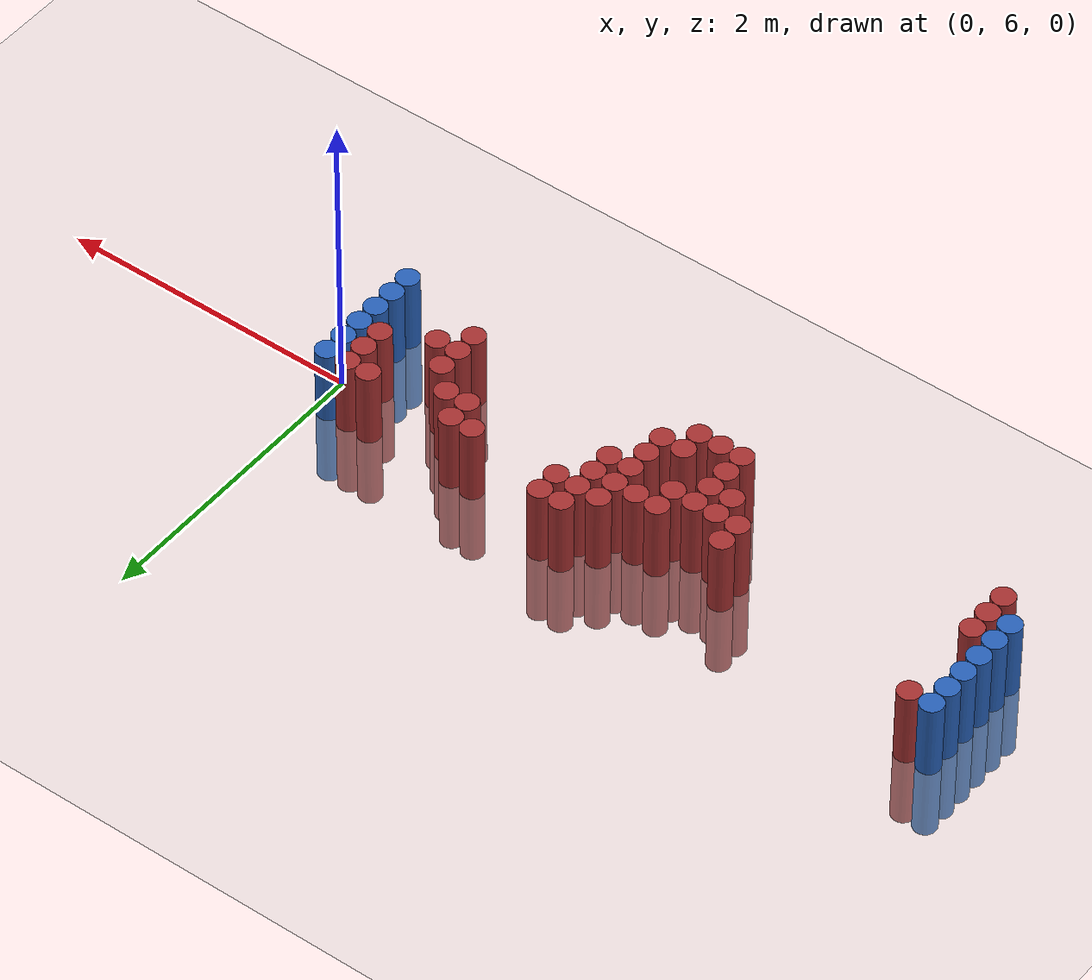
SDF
<sdf version="1.6">
 <world name="default">
  <model name="ground_plane">
   <static>1</static>
   <link name="link">
    <collision name="collision">
     <geometry><plane><normal>0 0 1</normal><size>100 100</size></plane></geometry>
     <surface><friction><ode><mu>100</mu><mu2>50</mu2></ode></friction></surface>
    </collision>
    <visual name="visual">
     <cast_shadows>0</cast_shadows>
     <geometry><plane><normal>0 0 1</normal><size>100 100</size></plane></geometry>
     <material>
      <script><uri>file://media/materials/scripts/gazebo.material</uri><name>Gazebo/Grey</name></script>
     </material>
    </visual>
   </link>
  </model>
  <model name="unit_cylinder_99">
   <static>1</static>
   <pose>-4.425000 5.625000 0.000000 0.000000 0.000000 0.000000</pose>
   <link name="link">
    <inertial>
     <mass>1</mass>
     <inertia><ixx>0.145833</ixx><ixy>0</ixy><ixz>0</ixz><iyy>0.145833</iyy><iyz>0</iyz><izz>0.125</izz></inertia>
    </inertial>
    <collision name="collision">
     <geometry><cylinder><radius>0.075000</radius><length>1</length></cylinder></geometry>
    </collision>
    <visual name="visual">
     <geometry><cylinder><radius>0.075000</radius><length>1</length></cylinder></geometry>
     <material>
      <ambient>0.152000 0.379000 0.720000 1</ambient>
      <diffuse>0.152000 0.379000 0.720000 1</diffuse>
     </material>
     <material>
      <script><name>Gazebo/Grey</name><uri>file://media/materials/scripts/gazebo.material</uri></script>
     </material>
    </visual>
   </link>
  </model>
  <model name="unit_cylinder_100">
   <static>1</static>
   <pose>-4.425000 5.775000 0.000000 0.000000 0.000000 0.000000</pose>
   <link name="link">
    <inertial>
     <mass>1</mass>
     <inertia><ixx>0.145833</ixx><ixy>0</ixy><ixz>0</ixz><iyy>0.145833</iyy><iyz>0</iyz><izz>0.125</izz></inertia>
    </inertial>
    <collision name="collision">
     <geometry><cylinder><radius>0.075000</radius><length>1</length></cylinder></geometry>
    </collision>
    <visual name="visual">
     <geometry><cylinder><radius>0.075000</radius><length>1</length></cylinder></geometry>
     <material>
      <ambient>0.152000 0.379000 0.720000 1</ambient>
      <diffuse>0.152000 0.379000 0.720000 1</diffuse>
     </material>
     <material>
      <script><name>Gazebo/Grey</name><uri>file://media/materials/scripts/gazebo.material</uri></script>
     </material>
    </visual>
   </link>
  </model>
  <model name="unit_cylinder_101">
   <static>1</static>
   <pose>-4.425000 5.925000 0.000000 0.000000 0.000000 0.000000</pose>
   <link name="link">
    <inertial>
     <mass>1</mass>
     <inertia><ixx>0.145833</ixx><ixy>0</ixy><ixz>0</ixz><iyy>0.145833</iyy><iyz>0</iyz><izz>0.125</izz></inertia>
    </inertial>
    <collision name="collision">
     <geometry><cylinder><radius>0.075000</radius><length>1</length></cylinder></geometry>
    </collision>
    <visual name="visual">
     <geometry><cylinder><radius>0.075000</radius><length>1</length></cylinder></geometry>
     <material>
      <ambient>0.152000 0.379000 0.720000 1</ambient>
      <diffuse>0.152000 0.379000 0.720000 1</diffuse>
     </material>
     <material>
      <script><name>Gazebo/Grey</name><uri>file://media/materials/scripts/gazebo.material</uri></script>
     </material>
    </visual>
   </link>
  </model>
  <model name="unit_cylinder_102">
   <static>1</static>
   <pose>-4.425000 6.075000 0.000000 0.000000 0.000000 0.000000</pose>
   <link name="link">
    <inertial>
     <mass>1</mass>
     <inertia><ixx>0.145833</ixx><ixy>0</ixy><ixz>0</ixz><iyy>0.145833</iyy><iyz>0</iyz><izz>0.125</izz></inertia>
    </inertial>
    <collision name="collision">
     <geometry><cylinder><radius>0.075000</radius><length>1</length></cylinder></geometry>
    </collision>
    <visual name="visual">
     <geometry><cylinder><radius>0.075000</radius><length>1</length></cylinder></geometry>
     <material>
      <ambient>0.152000 0.379000 0.720000 1</ambient>
      <diffuse>0.152000 0.379000 0.720000 1</diffuse>
     </material>
     <material>
      <script><name>Gazebo/Grey</name><uri>file://media/materials/scripts/gazebo.material</uri></script>
     </material>
    </visual>
   </link>
  </model>
  <model name="unit_cylinder_103">
   <static>1</static>
   <pose>-4.425000 6.225000 0.000000 0.000000 0.000000 0.000000</pose>
   <link name="link">
    <inertial>
     <mass>1</mass>
     <inertia><ixx>0.145833</ixx><ixy>0</ixy><ixz>0</ixz><iyy>0.145833</iyy><iyz>0</iyz><izz>0.125</izz></inertia>
    </inertial>
    <collision name="collision">
     <geometry><cylinder><radius>0.075000</radius><length>1</length></cylinder></geometry>
    </collision>
    <visual name="visual">
     <geometry><cylinder><radius>0.075000</radius><length>1</length></cylinder></geometry>
     <material>
      <ambient>0.152000 0.379000 0.720000 1</ambient>
      <diffuse>0.152000 0.379000 0.720000 1</diffuse>
     </material>
     <material>
      <script><name>Gazebo/Grey</name><uri>file://media/materials/scripts/gazebo.material</uri></script>
     </material>
    </visual>
   </link>
  </model>
  <model name="unit_cylinder_104">
   <static>1</static>
   <pose>-4.425000 6.375000 0.000000 0.000000 0.000000 0.000000</pose>
   <link name="link">
    <inertial>
     <mass>1</mass>
     <inertia><ixx>0.145833</ixx><ixy>0</ixy><ixz>0</ixz><iyy>0.145833</iyy><iyz>0</iyz><izz>0.125</izz></inertia>
    </inertial>
    <collision name="collision">
     <geometry><cylinder><radius>0.075000</radius><length>1</length></cylinder></geometry>
    </collision>
    <visual name="visual">
     <geometry><cylinder><radius>0.075000</radius><length>1</length></cylinder></geometry>
     <material>
      <ambient>0.152000 0.379000 0.720000 1</ambient>
      <diffuse>0.152000 0.379000 0.720000 1</diffuse>
     </material>
     <material>
      <script><name>Gazebo/Grey</name><uri>file://media/materials/scripts/gazebo.material</uri></script>
     </material>
    </visual>
   </link>
  </model>
  <model name="unit_cylinder_128">
   <static>1</static>
   <pose>-4.275000 5.475000 0.000000 0.000000 0.000000 0.000000</pose>
   <link name="link">
    <inertial>
     <mass>1</mass>
     <inertia><ixx>0.145833</ixx><ixy>0</ixy><ixz>0</ixz><iyy>0.145833</iyy><iyz>0</iyz><izz>0.125</izz></inertia>
    </inertial>
    <collision name="collision">
     <geometry><cylinder><radius>0.075000</radius><length>1</length></cylinder></geometry>
    </collision>
    <visual name="visual">
     <geometry><cylinder><radius>0.075000</radius><length>1</length></cylinder></geometry>
     <material>
      <ambient>0.648000 0.192000 0.192000 1</ambient>
      <diffuse>0.648000 0.192000 0.192000 1</diffuse>
     </material>
     <material>
      <script><name>Gazebo/Grey</name><uri>file://media/materials/scripts/gazebo.material</uri></script>
     </material>
    </visual>
   </link>
  </model>
  <model name="unit_cylinder_129">
   <static>1</static>
   <pose>-4.275000 5.625000 0.000000 0.000000 0.000000 0.000000</pose>
   <link name="link">
    <inertial>
     <mass>1</mass>
     <inertia><ixx>0.145833</ixx><ixy>0</ixy><ixz>0</ixz><iyy>0.145833</iyy><iyz>0</iyz><izz>0.125</izz></inertia>
    </inertial>
    <collision name="collision">
     <geometry><cylinder><radius>0.075000</radius><length>1</length></cylinder></geometry>
    </collision>
    <visual name="visual">
     <geometry><cylinder><radius>0.075000</radius><length>1</length></cylinder></geometry>
     <material>
      <ambient>0.648000 0.192000 0.192000 1</ambient>
      <diffuse>0.648000 0.192000 0.192000 1</diffuse>
     </material>
     <material>
      <script><name>Gazebo/Grey</name><uri>file://media/materials/scripts/gazebo.material</uri></script>
     </material>
    </visual>
   </link>
  </model>
  <model name="unit_cylinder_130">
   <static>1</static>
   <pose>-4.275000 5.775000 0.000000 0.000000 0.000000 0.000000</pose>
   <link name="link">
    <inertial>
     <mass>1</mass>
     <inertia><ixx>0.145833</ixx><ixy>0</ixy><ixz>0</ixz><iyy>0.145833</iyy><iyz>0</iyz><izz>0.125</izz></inertia>
    </inertial>
    <collision name="collision">
     <geometry><cylinder><radius>0.075000</radius><length>1</length></cylinder></geometry>
    </collision>
    <visual name="visual">
     <geometry><cylinder><radius>0.075000</radius><length>1</length></cylinder></geometry>
     <material>
      <ambient>0.648000 0.192000 0.192000 1</ambient>
      <diffuse>0.648000 0.192000 0.192000 1</diffuse>
     </material>
     <material>
      <script><name>Gazebo/Grey</name><uri>file://media/materials/scripts/gazebo.material</uri></script>
     </material>
    </visual>
   </link>
  </model>
  <model name="unit_cylinder_131">
   <static>1</static>
   <pose>-4.275000 6.375000 0.000000 0.000000 0.000000 0.000000</pose>
   <link name="link">
    <inertial>
     <mass>1</mass>
     <inertia><ixx>0.145833</ixx><ixy>0</ixy><ixz>0</ixz><iyy>0.145833</iyy><iyz>0</iyz><izz>0.125</izz></inertia>
    </inertial>
    <collision name="collision">
     <geometry><cylinder><radius>0.075000</radius><length>1</length></cylinder></geometry>
    </collision>
    <visual name="visual">
     <geometry><cylinder><radius>0.075000</radius><length>1</length></cylinder></geometry>
     <material>
      <ambient>0.648000 0.192000 0.192000 1</ambient>
      <diffuse>0.648000 0.192000 0.192000 1</diffuse>
     </material>
     <material>
      <script><name>Gazebo/Grey</name><uri>file://media/materials/scripts/gazebo.material</uri></script>
     </material>
    </visual>
   </link>
  </model>
  <model name="unit_cylinder_162">
   <static>1</static>
   <pose>-2.775000 5.925000 0.000000 0.000000 0.000000 0.000000</pose>
   <link name="link">
    <inertial>
     <mass>1</mass>
     <inertia><ixx>0.145833</ixx><ixy>0</ixy><ixz>0</ixz><iyy>0.145833</iyy><iyz>0</iyz><izz>0.125</izz></inertia>
    </inertial>
    <collision name="collision">
     <geometry><cylinder><radius>0.075000</radius><length>1</length></cylinder></geometry>
    </collision>
    <visual name="visual">
     <geometry><cylinder><radius>0.075000</radius><length>1</length></cylinder></geometry>
     <material>
      <ambient>0.648000 0.192000 0.192000 1</ambient>
      <diffuse>0.648000 0.192000 0.192000 1</diffuse>
     </material>
     <material>
      <script><name>Gazebo/Grey</name><uri>file://media/materials/scripts/gazebo.material</uri></script>
     </material>
    </visual>
   </link>
  </model>
  <model name="unit_cylinder_163">
   <static>1</static>
   <pose>-2.775000 6.075000 0.000000 0.000000 0.000000 0.000000</pose>
   <link name="link">
    <inertial>
     <mass>1</mass>
     <inertia><ixx>0.145833</ixx><ixy>0</ixy><ixz>0</ixz><iyy>0.145833</iyy><iyz>0</iyz><izz>0.125</izz></inertia>
    </inertial>
    <collision name="collision">
     <geometry><cylinder><radius>0.075000</radius><length>1</length></cylinder></geometry>
    </collision>
    <visual name="visual">
     <geometry><cylinder><radius>0.075000</radius><length>1</length></cylinder></geometry>
     <material>
      <ambient>0.648000 0.192000 0.192000 1</ambient>
      <diffuse>0.648000 0.192000 0.192000 1</diffuse>
     </material>
     <material>
      <script><name>Gazebo/Grey</name><uri>file://media/materials/scripts/gazebo.material</uri></script>
     </material>
    </visual>
   </link>
  </model>
  <model name="unit_cylinder_165">
   <static>1</static>
   <pose>-2.625000 5.775000 0.000000 0.000000 0.000000 0.000000</pose>
   <link name="link">
    <inertial>
     <mass>1</mass>
     <inertia><ixx>0.145833</ixx><ixy>0</ixy><ixz>0</ixz><iyy>0.145833</iyy><iyz>0</iyz><izz>0.125</izz></inertia>
    </inertial>
    <collision name="collision">
     <geometry><cylinder><radius>0.075000</radius><length>1</length></cylinder></geometry>
    </collision>
    <visual name="visual">
     <geometry><cylinder><radius>0.075000</radius><length>1</length></cylinder></geometry>
     <material>
      <ambient>0.648000 0.192000 0.192000 1</ambient>
      <diffuse>0.648000 0.192000 0.192000 1</diffuse>
     </material>
     <material>
      <script><name>Gazebo/Grey</name><uri>file://media/materials/scripts/gazebo.material</uri></script>
     </material>
    </visual>
   </link>
  </model>
  <model name="unit_cylinder_166">
   <static>1</static>
   <pose>-2.625000 5.925000 0.000000 0.000000 0.000000 0.000000</pose>
   <link name="link">
    <inertial>
     <mass>1</mass>
     <inertia><ixx>0.145833</ixx><ixy>0</ixy><ixz>0</ixz><iyy>0.145833</iyy><iyz>0</iyz><izz>0.125</izz></inertia>
    </inertial>
    <collision name="collision">
     <geometry><cylinder><radius>0.075000</radius><length>1</length></cylinder></geometry>
    </collision>
    <visual name="visual">
     <geometry><cylinder><radius>0.075000</radius><length>1</length></cylinder></geometry>
     <material>
      <ambient>0.648000 0.192000 0.192000 1</ambient>
      <diffuse>0.648000 0.192000 0.192000 1</diffuse>
     </material>
     <material>
      <script><name>Gazebo/Grey</name><uri>file://media/materials/scripts/gazebo.material</uri></script>
     </material>
    </visual>
   </link>
  </model>
  <model name="unit_cylinder_170">
   <static>1</static>
   <pose>-2.475000 5.475000 0.000000 0.000000 0.000000 0.000000</pose>
   <link name="link">
    <inertial>
     <mass>1</mass>
     <inertia><ixx>0.145833</ixx><ixy>0</ixy><ixz>0</ixz><iyy>0.145833</iyy><iyz>0</iyz><izz>0.125</izz></inertia>
    </inertial>
    <collision name="collision">
     <geometry><cylinder><radius>0.075000</radius><length>1</length></cylinder></geometry>
    </collision>
    <visual name="visual">
     <geometry><cylinder><radius>0.075000</radius><length>1</length></cylinder></geometry>
     <material>
      <ambient>0.648000 0.192000 0.192000 1</ambient>
      <diffuse>0.648000 0.192000 0.192000 1</diffuse>
     </material>
     <material>
      <script><name>Gazebo/Grey</name><uri>file://media/materials/scripts/gazebo.material</uri></script>
     </material>
    </visual>
   </link>
  </model>
  <model name="unit_cylinder_171">
   <static>1</static>
   <pose>-2.475000 5.625000 0.000000 0.000000 0.000000 0.000000</pose>
   <link name="link">
    <inertial>
     <mass>1</mass>
     <inertia><ixx>0.145833</ixx><ixy>0</ixy><ixz>0</ixz><iyy>0.145833</iyy><iyz>0</iyz><izz>0.125</izz></inertia>
    </inertial>
    <collision name="collision">
     <geometry><cylinder><radius>0.075000</radius><length>1</length></cylinder></geometry>
    </collision>
    <visual name="visual">
     <geometry><cylinder><radius>0.075000</radius><length>1</length></cylinder></geometry>
     <material>
      <ambient>0.648000 0.192000 0.192000 1</ambient>
      <diffuse>0.648000 0.192000 0.192000 1</diffuse>
     </material>
     <material>
      <script><name>Gazebo/Grey</name><uri>file://media/materials/scripts/gazebo.material</uri></script>
     </material>
    </visual>
   </link>
  </model>
  <model name="unit_cylinder_172">
   <static>1</static>
   <pose>-2.475000 5.775000 0.000000 0.000000 0.000000 0.000000</pose>
   <link name="link">
    <inertial>
     <mass>1</mass>
     <inertia><ixx>0.145833</ixx><ixy>0</ixy><ixz>0</ixz><iyy>0.145833</iyy><iyz>0</iyz><izz>0.125</izz></inertia>
    </inertial>
    <collision name="collision">
     <geometry><cylinder><radius>0.075000</radius><length>1</length></cylinder></geometry>
    </collision>
    <visual name="visual">
     <geometry><cylinder><radius>0.075000</radius><length>1</length></cylinder></geometry>
     <material>
      <ambient>0.648000 0.192000 0.192000 1</ambient>
      <diffuse>0.648000 0.192000 0.192000 1</diffuse>
     </material>
     <material>
      <script><name>Gazebo/Grey</name><uri>file://media/materials/scripts/gazebo.material</uri></script>
     </material>
    </visual>
   </link>
  </model>
  <model name="unit_cylinder_173">
   <static>1</static>
   <pose>-2.475000 5.925000 0.000000 0.000000 0.000000 0.000000</pose>
   <link name="link">
    <inertial>
     <mass>1</mass>
     <inertia><ixx>0.145833</ixx><ixy>0</ixy><ixz>0</ixz><iyy>0.145833</iyy><iyz>0</iyz><izz>0.125</izz></inertia>
    </inertial>
    <collision name="collision">
     <geometry><cylinder><radius>0.075000</radius><length>1</length></cylinder></geometry>
    </collision>
    <visual name="visual">
     <geometry><cylinder><radius>0.075000</radius><length>1</length></cylinder></geometry>
     <material>
      <ambient>0.648000 0.192000 0.192000 1</ambient>
      <diffuse>0.648000 0.192000 0.192000 1</diffuse>
     </material>
     <material>
      <script><name>Gazebo/Grey</name><uri>file://media/materials/scripts/gazebo.material</uri></script>
     </material>
    </visual>
   </link>
  </model>
  <model name="unit_cylinder_176">
   <static>1</static>
   <pose>-2.325000 5.475000 0.000000 0.000000 0.000000 0.000000</pose>
   <link name="link">
    <inertial>
     <mass>1</mass>
     <inertia><ixx>0.145833</ixx><ixy>0</ixy><ixz>0</ixz><iyy>0.145833</iyy><iyz>0</iyz><izz>0.125</izz></inertia>
    </inertial>
    <collision name="collision">
     <geometry><cylinder><radius>0.075000</radius><length>1</length></cylinder></geometry>
    </collision>
    <visual name="visual">
     <geometry><cylinder><radius>0.075000</radius><length>1</length></cylinder></geometry>
     <material>
      <ambient>0.648000 0.192000 0.192000 1</ambient>
      <diffuse>0.648000 0.192000 0.192000 1</diffuse>
     </material>
     <material>
      <script><name>Gazebo/Grey</name><uri>file://media/materials/scripts/gazebo.material</uri></script>
     </material>
    </visual>
   </link>
  </model>
  <model name="unit_cylinder_177">
   <static>1</static>
   <pose>-2.325000 5.925000 0.000000 0.000000 0.000000 0.000000</pose>
   <link name="link">
    <inertial>
     <mass>1</mass>
     <inertia><ixx>0.145833</ixx><ixy>0</ixy><ixz>0</ixz><iyy>0.145833</iyy><iyz>0</iyz><izz>0.125</izz></inertia>
    </inertial>
    <collision name="collision">
     <geometry><cylinder><radius>0.075000</radius><length>1</length></cylinder></geometry>
    </collision>
    <visual name="visual">
     <geometry><cylinder><radius>0.075000</radius><length>1</length></cylinder></geometry>
     <material>
      <ambient>0.648000 0.192000 0.192000 1</ambient>
      <diffuse>0.648000 0.192000 0.192000 1</diffuse>
     </material>
     <material>
      <script><name>Gazebo/Grey</name><uri>file://media/materials/scripts/gazebo.material</uri></script>
     </material>
    </visual>
   </link>
  </model>
  <model name="unit_cylinder_178">
   <static>1</static>
   <pose>-2.325000 6.075000 0.000000 0.000000 0.000000 0.000000</pose>
   <link name="link">
    <inertial>
     <mass>1</mass>
     <inertia><ixx>0.145833</ixx><ixy>0</ixy><ixz>0</ixz><iyy>0.145833</iyy><iyz>0</iyz><izz>0.125</izz></inertia>
    </inertial>
    <collision name="collision">
     <geometry><cylinder><radius>0.075000</radius><length>1</length></cylinder></geometry>
    </collision>
    <visual name="visual">
     <geometry><cylinder><radius>0.075000</radius><length>1</length></cylinder></geometry>
     <material>
      <ambient>0.648000 0.192000 0.192000 1</ambient>
      <diffuse>0.648000 0.192000 0.192000 1</diffuse>
     </material>
     <material>
      <script><name>Gazebo/Grey</name><uri>file://media/materials/scripts/gazebo.material</uri></script>
     </material>
    </visual>
   </link>
  </model>
  <model name="unit_cylinder_179">
   <static>1</static>
   <pose>-2.175000 5.475000 0.000000 0.000000 0.000000 0.000000</pose>
   <link name="link">
    <inertial>
     <mass>1</mass>
     <inertia><ixx>0.145833</ixx><ixy>0</ixy><ixz>0</ixz><iyy>0.145833</iyy><iyz>0</iyz><izz>0.125</izz></inertia>
    </inertial>
    <collision name="collision">
     <geometry><cylinder><radius>0.075000</radius><length>1</length></cylinder></geometry>
    </collision>
    <visual name="visual">
     <geometry><cylinder><radius>0.075000</radius><length>1</length></cylinder></geometry>
     <material>
      <ambient>0.648000 0.192000 0.192000 1</ambient>
      <diffuse>0.648000 0.192000 0.192000 1</diffuse>
     </material>
     <material>
      <script><name>Gazebo/Grey</name><uri>file://media/materials/scripts/gazebo.material</uri></script>
     </material>
    </visual>
   </link>
  </model>
  <model name="unit_cylinder_180">
   <static>1</static>
   <pose>-2.175000 5.625000 0.000000 0.000000 0.000000 0.000000</pose>
   <link name="link">
    <inertial>
     <mass>1</mass>
     <inertia><ixx>0.145833</ixx><ixy>0</ixy><ixz>0</ixz><iyy>0.145833</iyy><iyz>0</iyz><izz>0.125</izz></inertia>
    </inertial>
    <collision name="collision">
     <geometry><cylinder><radius>0.075000</radius><length>1</length></cylinder></geometry>
    </collision>
    <visual name="visual">
     <geometry><cylinder><radius>0.075000</radius><length>1</length></cylinder></geometry>
     <material>
      <ambient>0.648000 0.192000 0.192000 1</ambient>
      <diffuse>0.648000 0.192000 0.192000 1</diffuse>
     </material>
     <material>
      <script><name>Gazebo/Grey</name><uri>file://media/materials/scripts/gazebo.material</uri></script>
     </material>
    </visual>
   </link>
  </model>
  <model name="unit_cylinder_181">
   <static>1</static>
   <pose>-2.175000 6.075000 0.000000 0.000000 0.000000 0.000000</pose>
   <link name="link">
    <inertial>
     <mass>1</mass>
     <inertia><ixx>0.145833</ixx><ixy>0</ixy><ixz>0</ixz><iyy>0.145833</iyy><iyz>0</iyz><izz>0.125</izz></inertia>
    </inertial>
    <collision name="collision">
     <geometry><cylinder><radius>0.075000</radius><length>1</length></cylinder></geometry>
    </collision>
    <visual name="visual">
     <geometry><cylinder><radius>0.075000</radius><length>1</length></cylinder></geometry>
     <material>
      <ambient>0.648000 0.192000 0.192000 1</ambient>
      <diffuse>0.648000 0.192000 0.192000 1</diffuse>
     </material>
     <material>
      <script><name>Gazebo/Grey</name><uri>file://media/materials/scripts/gazebo.material</uri></script>
     </material>
    </visual>
   </link>
  </model>
  <model name="unit_cylinder_183">
   <static>1</static>
   <pose>-2.025000 5.625000 0.000000 0.000000 0.000000 0.000000</pose>
   <link name="link">
    <inertial>
     <mass>1</mass>
     <inertia><ixx>0.145833</ixx><ixy>0</ixy><ixz>0</ixz><iyy>0.145833</iyy><iyz>0</iyz><izz>0.125</izz></inertia>
    </inertial>
    <collision name="collision">
     <geometry><cylinder><radius>0.075000</radius><length>1</length></cylinder></geometry>
    </collision>
    <visual name="visual">
     <geometry><cylinder><radius>0.075000</radius><length>1</length></cylinder></geometry>
     <material>
      <ambient>0.648000 0.192000 0.192000 1</ambient>
      <diffuse>0.648000 0.192000 0.192000 1</diffuse>
     </material>
     <material>
      <script><name>Gazebo/Grey</name><uri>file://media/materials/scripts/gazebo.material</uri></script>
     </material>
    </visual>
   </link>
  </model>
  <model name="unit_cylinder_184">
   <static>1</static>
   <pose>-2.025000 5.775000 0.000000 0.000000 0.000000 0.000000</pose>
   <link name="link">
    <inertial>
     <mass>1</mass>
     <inertia><ixx>0.145833</ixx><ixy>0</ixy><ixz>0</ixz><iyy>0.145833</iyy><iyz>0</iyz><izz>0.125</izz></inertia>
    </inertial>
    <collision name="collision">
     <geometry><cylinder><radius>0.075000</radius><length>1</length></cylinder></geometry>
    </collision>
    <visual name="visual">
     <geometry><cylinder><radius>0.075000</radius><length>1</length></cylinder></geometry>
     <material>
      <ambient>0.648000 0.192000 0.192000 1</ambient>
      <diffuse>0.648000 0.192000 0.192000 1</diffuse>
     </material>
     <material>
      <script><name>Gazebo/Grey</name><uri>file://media/materials/scripts/gazebo.material</uri></script>
     </material>
    </visual>
   </link>
  </model>
  <model name="unit_cylinder_185">
   <static>1</static>
   <pose>-2.025000 5.925000 0.000000 0.000000 0.000000 0.000000</pose>
   <link name="link">
    <inertial>
     <mass>1</mass>
     <inertia><ixx>0.145833</ixx><ixy>0</ixy><ixz>0</ixz><iyy>0.145833</iyy><iyz>0</iyz><izz>0.125</izz></inertia>
    </inertial>
    <collision name="collision">
     <geometry><cylinder><radius>0.075000</radius><length>1</length></cylinder></geometry>
    </collision>
    <visual name="visual">
     <geometry><cylinder><radius>0.075000</radius><length>1</length></cylinder></geometry>
     <material>
      <ambient>0.648000 0.192000 0.192000 1</ambient>
      <diffuse>0.648000 0.192000 0.192000 1</diffuse>
     </material>
     <material>
      <script><name>Gazebo/Grey</name><uri>file://media/materials/scripts/gazebo.material</uri></script>
     </material>
    </visual>
   </link>
  </model>
  <model name="unit_cylinder_186">
   <static>1</static>
   <pose>-2.025000 6.075000 0.000000 0.000000 0.000000 0.000000</pose>
   <link name="link">
    <inertial>
     <mass>1</mass>
     <inertia><ixx>0.145833</ixx><ixy>0</ixy><ixz>0</ixz><iyy>0.145833</iyy><iyz>0</iyz><izz>0.125</izz></inertia>
    </inertial>
    <collision name="collision">
     <geometry><cylinder><radius>0.075000</radius><length>1</length></cylinder></geometry>
    </collision>
    <visual name="visual">
     <geometry><cylinder><radius>0.075000</radius><length>1</length></cylinder></geometry>
     <material>
      <ambient>0.648000 0.192000 0.192000 1</ambient>
      <diffuse>0.648000 0.192000 0.192000 1</diffuse>
     </material>
     <material>
      <script><name>Gazebo/Grey</name><uri>file://media/materials/scripts/gazebo.material</uri></script>
     </material>
    </visual>
   </link>
  </model>
  <model name="unit_cylinder_187">
   <static>1</static>
   <pose>-2.025000 6.225000 0.000000 0.000000 0.000000 0.000000</pose>
   <link name="link">
    <inertial>
     <mass>1</mass>
     <inertia><ixx>0.145833</ixx><ixy>0</ixy><ixz>0</ixz><iyy>0.145833</iyy><iyz>0</iyz><izz>0.125</izz></inertia>
    </inertial>
    <collision name="collision">
     <geometry><cylinder><radius>0.075000</radius><length>1</length></cylinder></geometry>
    </collision>
    <visual name="visual">
     <geometry><cylinder><radius>0.075000</radius><length>1</length></cylinder></geometry>
     <material>
      <ambient>0.648000 0.192000 0.192000 1</ambient>
      <diffuse>0.648000 0.192000 0.192000 1</diffuse>
     </material>
     <material>
      <script><name>Gazebo/Grey</name><uri>file://media/materials/scripts/gazebo.material</uri></script>
     </material>
    </visual>
   </link>
  </model>
  <model name="unit_cylinder_193">
   <static>1</static>
   <pose>-1.875000 5.925000 0.000000 0.000000 0.000000 0.000000</pose>
   <link name="link">
    <inertial>
     <mass>1</mass>
     <inertia><ixx>0.145833</ixx><ixy>0</ixy><ixz>0</ixz><iyy>0.145833</iyy><iyz>0</iyz><izz>0.125</izz></inertia>
    </inertial>
    <collision name="collision">
     <geometry><cylinder><radius>0.075000</radius><length>1</length></cylinder></geometry>
    </collision>
    <visual name="visual">
     <geometry><cylinder><radius>0.075000</radius><length>1</length></cylinder></geometry>
     <material>
      <ambient>0.648000 0.192000 0.192000 1</ambient>
      <diffuse>0.648000 0.192000 0.192000 1</diffuse>
     </material>
     <material>
      <script><name>Gazebo/Grey</name><uri>file://media/materials/scripts/gazebo.material</uri></script>
     </material>
    </visual>
   </link>
  </model>
  <model name="unit_cylinder_194">
   <static>1</static>
   <pose>-1.875000 6.075000 0.000000 0.000000 0.000000 0.000000</pose>
   <link name="link">
    <inertial>
     <mass>1</mass>
     <inertia><ixx>0.145833</ixx><ixy>0</ixy><ixz>0</ixz><iyy>0.145833</iyy><iyz>0</iyz><izz>0.125</izz></inertia>
    </inertial>
    <collision name="collision">
     <geometry><cylinder><radius>0.075000</radius><length>1</length></cylinder></geometry>
    </collision>
    <visual name="visual">
     <geometry><cylinder><radius>0.075000</radius><length>1</length></cylinder></geometry>
     <material>
      <ambient>0.648000 0.192000 0.192000 1</ambient>
      <diffuse>0.648000 0.192000 0.192000 1</diffuse>
     </material>
     <material>
      <script><name>Gazebo/Grey</name><uri>file://media/materials/scripts/gazebo.material</uri></script>
     </material>
    </visual>
   </link>
  </model>
  <model name="unit_cylinder_195">
   <static>1</static>
   <pose>-1.875000 6.225000 0.000000 0.000000 0.000000 0.000000</pose>
   <link name="link">
    <inertial>
     <mass>1</mass>
     <inertia><ixx>0.145833</ixx><ixy>0</ixy><ixz>0</ixz><iyy>0.145833</iyy><iyz>0</iyz><izz>0.125</izz></inertia>
    </inertial>
    <collision name="collision">
     <geometry><cylinder><radius>0.075000</radius><length>1</length></cylinder></geometry>
    </collision>
    <visual name="visual">
     <geometry><cylinder><radius>0.075000</radius><length>1</length></cylinder></geometry>
     <material>
      <ambient>0.648000 0.192000 0.192000 1</ambient>
      <diffuse>0.648000 0.192000 0.192000 1</diffuse>
     </material>
     <material>
      <script><name>Gazebo/Grey</name><uri>file://media/materials/scripts/gazebo.material</uri></script>
     </material>
    </visual>
   </link>
  </model>
  <model name="unit_cylinder_196">
   <static>1</static>
   <pose>-1.875000 6.375000 0.000000 0.000000 0.000000 0.000000</pose>
   <link name="link">
    <inertial>
     <mass>1</mass>
     <inertia><ixx>0.145833</ixx><ixy>0</ixy><ixz>0</ixz><iyy>0.145833</iyy><iyz>0</iyz><izz>0.125</izz></inertia>
    </inertial>
    <collision name="collision">
     <geometry><cylinder><radius>0.075000</radius><length>1</length></cylinder></geometry>
    </collision>
    <visual name="visual">
     <geometry><cylinder><radius>0.075000</radius><length>1</length></cylinder></geometry>
     <material>
      <ambient>0.648000 0.192000 0.192000 1</ambient>
      <diffuse>0.648000 0.192000 0.192000 1</diffuse>
     </material>
     <material>
      <script><name>Gazebo/Grey</name><uri>file://media/materials/scripts/gazebo.material</uri></script>
     </material>
    </visual>
   </link>
  </model>
  <model name="unit_cylinder_205">
   <static>1</static>
   <pose>-1.725000 6.225000 0.000000 0.000000 0.000000 0.000000</pose>
   <link name="link">
    <inertial>
     <mass>1</mass>
     <inertia><ixx>0.145833</ixx><ixy>0</ixy><ixz>0</ixz><iyy>0.145833</iyy><iyz>0</iyz><izz>0.125</izz></inertia>
    </inertial>
    <collision name="collision">
     <geometry><cylinder><radius>0.075000</radius><length>1</length></cylinder></geometry>
    </collision>
    <visual name="visual">
     <geometry><cylinder><radius>0.075000</radius><length>1</length></cylinder></geometry>
     <material>
      <ambient>0.648000 0.192000 0.192000 1</ambient>
      <diffuse>0.648000 0.192000 0.192000 1</diffuse>
     </material>
     <material>
      <script><name>Gazebo/Grey</name><uri>file://media/materials/scripts/gazebo.material</uri></script>
     </material>
    </visual>
   </link>
  </model>
  <model name="unit_cylinder_206">
   <static>1</static>
   <pose>-1.725000 6.375000 0.000000 0.000000 0.000000 0.000000</pose>
   <link name="link">
    <inertial>
     <mass>1</mass>
     <inertia><ixx>0.145833</ixx><ixy>0</ixy><ixz>0</ixz><iyy>0.145833</iyy><iyz>0</iyz><izz>0.125</izz></inertia>
    </inertial>
    <collision name="collision">
     <geometry><cylinder><radius>0.075000</radius><length>1</length></cylinder></geometry>
    </collision>
    <visual name="visual">
     <geometry><cylinder><radius>0.075000</radius><length>1</length></cylinder></geometry>
     <material>
      <ambient>0.648000 0.192000 0.192000 1</ambient>
      <diffuse>0.648000 0.192000 0.192000 1</diffuse>
     </material>
     <material>
      <script><name>Gazebo/Grey</name><uri>file://media/materials/scripts/gazebo.material</uri></script>
     </material>
    </visual>
   </link>
  </model>
  <model name="unit_cylinder_226">
   <static>1</static>
   <pose>-1.125000 6.225000 0.000000 0.000000 0.000000 0.000000</pose>
   <link name="link">
    <inertial>
     <mass>1</mass>
     <inertia><ixx>0.145833</ixx><ixy>0</ixy><ixz>0</ixz><iyy>0.145833</iyy><iyz>0</iyz><izz>0.125</izz></inertia>
    </inertial>
    <collision name="collision">
     <geometry><cylinder><radius>0.075000</radius><length>1</length></cylinder></geometry>
    </collision>
    <visual name="visual">
     <geometry><cylinder><radius>0.075000</radius><length>1</length></cylinder></geometry>
     <material>
      <ambient>0.648000 0.192000 0.192000 1</ambient>
      <diffuse>0.648000 0.192000 0.192000 1</diffuse>
     </material>
     <material>
      <script><name>Gazebo/Grey</name><uri>file://media/materials/scripts/gazebo.material</uri></script>
     </material>
    </visual>
   </link>
  </model>
  <model name="unit_cylinder_234">
   <static>1</static>
   <pose>-0.975000 6.075000 0.000000 0.000000 0.000000 0.000000</pose>
   <link name="link">
    <inertial>
     <mass>1</mass>
     <inertia><ixx>0.145833</ixx><ixy>0</ixy><ixz>0</ixz><iyy>0.145833</iyy><iyz>0</iyz><izz>0.125</izz></inertia>
    </inertial>
    <collision name="collision">
     <geometry><cylinder><radius>0.075000</radius><length>1</length></cylinder></geometry>
    </collision>
    <visual name="visual">
     <geometry><cylinder><radius>0.075000</radius><length>1</length></cylinder></geometry>
     <material>
      <ambient>0.648000 0.192000 0.192000 1</ambient>
      <diffuse>0.648000 0.192000 0.192000 1</diffuse>
     </material>
     <material>
      <script><name>Gazebo/Grey</name><uri>file://media/materials/scripts/gazebo.material</uri></script>
     </material>
    </visual>
   </link>
  </model>
  <model name="unit_cylinder_235">
   <static>1</static>
   <pose>-0.975000 6.225000 0.000000 0.000000 0.000000 0.000000</pose>
   <link name="link">
    <inertial>
     <mass>1</mass>
     <inertia><ixx>0.145833</ixx><ixy>0</ixy><ixz>0</ixz><iyy>0.145833</iyy><iyz>0</iyz><izz>0.125</izz></inertia>
    </inertial>
    <collision name="collision">
     <geometry><cylinder><radius>0.075000</radius><length>1</length></cylinder></geometry>
    </collision>
    <visual name="visual">
     <geometry><cylinder><radius>0.075000</radius><length>1</length></cylinder></geometry>
     <material>
      <ambient>0.648000 0.192000 0.192000 1</ambient>
      <diffuse>0.648000 0.192000 0.192000 1</diffuse>
     </material>
     <material>
      <script><name>Gazebo/Grey</name><uri>file://media/materials/scripts/gazebo.material</uri></script>
     </material>
    </visual>
   </link>
  </model>
  <model name="unit_cylinder_243">
   <static>1</static>
   <pose>-0.825000 6.075000 0.000000 0.000000 0.000000 0.000000</pose>
   <link name="link">
    <inertial>
     <mass>1</mass>
     <inertia><ixx>0.145833</ixx><ixy>0</ixy><ixz>0</ixz><iyy>0.145833</iyy><iyz>0</iyz><izz>0.125</izz></inertia>
    </inertial>
    <collision name="collision">
     <geometry><cylinder><radius>0.075000</radius><length>1</length></cylinder></geometry>
    </collision>
    <visual name="visual">
     <geometry><cylinder><radius>0.075000</radius><length>1</length></cylinder></geometry>
     <material>
      <ambient>0.648000 0.192000 0.192000 1</ambient>
      <diffuse>0.648000 0.192000 0.192000 1</diffuse>
     </material>
     <material>
      <script><name>Gazebo/Grey</name><uri>file://media/materials/scripts/gazebo.material</uri></script>
     </material>
    </visual>
   </link>
  </model>
  <model name="unit_cylinder_254">
   <static>1</static>
   <pose>-0.675000 5.625000 0.000000 0.000000 0.000000 0.000000</pose>
   <link name="link">
    <inertial>
     <mass>1</mass>
     <inertia><ixx>0.145833</ixx><ixy>0</ixy><ixz>0</ixz><iyy>0.145833</iyy><iyz>0</iyz><izz>0.125</izz></inertia>
    </inertial>
    <collision name="collision">
     <geometry><cylinder><radius>0.075000</radius><length>1</length></cylinder></geometry>
    </collision>
    <visual name="visual">
     <geometry><cylinder><radius>0.075000</radius><length>1</length></cylinder></geometry>
     <material>
      <ambient>0.648000 0.192000 0.192000 1</ambient>
      <diffuse>0.648000 0.192000 0.192000 1</diffuse>
     </material>
     <material>
      <script><name>Gazebo/Grey</name><uri>file://media/materials/scripts/gazebo.material</uri></script>
     </material>
    </visual>
   </link>
  </model>
  <model name="unit_cylinder_255">
   <static>1</static>
   <pose>-0.675000 5.775000 0.000000 0.000000 0.000000 0.000000</pose>
   <link name="link">
    <inertial>
     <mass>1</mass>
     <inertia><ixx>0.145833</ixx><ixy>0</ixy><ixz>0</ixz><iyy>0.145833</iyy><iyz>0</iyz><izz>0.125</izz></inertia>
    </inertial>
    <collision name="collision">
     <geometry><cylinder><radius>0.075000</radius><length>1</length></cylinder></geometry>
    </collision>
    <visual name="visual">
     <geometry><cylinder><radius>0.075000</radius><length>1</length></cylinder></geometry>
     <material>
      <ambient>0.648000 0.192000 0.192000 1</ambient>
      <diffuse>0.648000 0.192000 0.192000 1</diffuse>
     </material>
     <material>
      <script><name>Gazebo/Grey</name><uri>file://media/materials/scripts/gazebo.material</uri></script>
     </material>
    </visual>
   </link>
  </model>
  <model name="unit_cylinder_256">
   <static>1</static>
   <pose>-0.675000 5.925000 0.000000 0.000000 0.000000 0.000000</pose>
   <link name="link">
    <inertial>
     <mass>1</mass>
     <inertia><ixx>0.145833</ixx><ixy>0</ixy><ixz>0</ixz><iyy>0.145833</iyy><iyz>0</iyz><izz>0.125</izz></inertia>
    </inertial>
    <collision name="collision">
     <geometry><cylinder><radius>0.075000</radius><length>1</length></cylinder></geometry>
    </collision>
    <visual name="visual">
     <geometry><cylinder><radius>0.075000</radius><length>1</length></cylinder></geometry>
     <material>
      <ambient>0.648000 0.192000 0.192000 1</ambient>
      <diffuse>0.648000 0.192000 0.192000 1</diffuse>
     </material>
     <material>
      <script><name>Gazebo/Grey</name><uri>file://media/materials/scripts/gazebo.material</uri></script>
     </material>
    </visual>
   </link>
  </model>
  <model name="unit_cylinder_262">
   <static>1</static>
   <pose>-0.525000 5.775000 0.000000 0.000000 0.000000 0.000000</pose>
   <link name="link">
    <inertial>
     <mass>1</mass>
     <inertia><ixx>0.145833</ixx><ixy>0</ixy><ixz>0</ixz><iyy>0.145833</iyy><iyz>0</iyz><izz>0.125</izz></inertia>
    </inertial>
    <collision name="collision">
     <geometry><cylinder><radius>0.075000</radius><length>1</length></cylinder></geometry>
    </collision>
    <visual name="visual">
     <geometry><cylinder><radius>0.075000</radius><length>1</length></cylinder></geometry>
     <material>
      <ambient>0.648000 0.192000 0.192000 1</ambient>
      <diffuse>0.648000 0.192000 0.192000 1</diffuse>
     </material>
     <material>
      <script><name>Gazebo/Grey</name><uri>file://media/materials/scripts/gazebo.material</uri></script>
     </material>
    </visual>
   </link>
  </model>
  <model name="unit_cylinder_268">
   <static>1</static>
   <pose>-0.375000 6.225000 0.000000 0.000000 0.000000 0.000000</pose>
   <link name="link">
    <inertial>
     <mass>1</mass>
     <inertia><ixx>0.145833</ixx><ixy>0</ixy><ixz>0</ixz><iyy>0.145833</iyy><iyz>0</iyz><izz>0.125</izz></inertia>
    </inertial>
    <collision name="collision">
     <geometry><cylinder><radius>0.075000</radius><length>1</length></cylinder></geometry>
    </collision>
    <visual name="visual">
     <geometry><cylinder><radius>0.075000</radius><length>1</length></cylinder></geometry>
     <material>
      <ambient>0.648000 0.192000 0.192000 1</ambient>
      <diffuse>0.648000 0.192000 0.192000 1</diffuse>
     </material>
     <material>
      <script><name>Gazebo/Grey</name><uri>file://media/materials/scripts/gazebo.material</uri></script>
     </material>
    </visual>
   </link>
  </model>
  <model name="unit_cylinder_277">
   <static>1</static>
   <pose>-0.225000 5.925000 0.000000 0.000000 0.000000 0.000000</pose>
   <link name="link">
    <inertial>
     <mass>1</mass>
     <inertia><ixx>0.145833</ixx><ixy>0</ixy><ixz>0</ixz><iyy>0.145833</iyy><iyz>0</iyz><izz>0.125</izz></inertia>
    </inertial>
    <collision name="collision">
     <geometry><cylinder><radius>0.075000</radius><length>1</length></cylinder></geometry>
    </collision>
    <visual name="visual">
     <geometry><cylinder><radius>0.075000</radius><length>1</length></cylinder></geometry>
     <material>
      <ambient>0.648000 0.192000 0.192000 1</ambient>
      <diffuse>0.648000 0.192000 0.192000 1</diffuse>
     </material>
     <material>
      <script><name>Gazebo/Grey</name><uri>file://media/materials/scripts/gazebo.material</uri></script>
     </material>
    </visual>
   </link>
  </model>
  <model name="unit_cylinder_278">
   <static>1</static>
   <pose>-0.225000 6.075000 0.000000 0.000000 0.000000 0.000000</pose>
   <link name="link">
    <inertial>
     <mass>1</mass>
     <inertia><ixx>0.145833</ixx><ixy>0</ixy><ixz>0</ixz><iyy>0.145833</iyy><iyz>0</iyz><izz>0.125</izz></inertia>
    </inertial>
    <collision name="collision">
     <geometry><cylinder><radius>0.075000</radius><length>1</length></cylinder></geometry>
    </collision>
    <visual name="visual">
     <geometry><cylinder><radius>0.075000</radius><length>1</length></cylinder></geometry>
     <material>
      <ambient>0.648000 0.192000 0.192000 1</ambient>
      <diffuse>0.648000 0.192000 0.192000 1</diffuse>
     </material>
     <material>
      <script><name>Gazebo/Grey</name><uri>file://media/materials/scripts/gazebo.material</uri></script>
     </material>
    </visual>
   </link>
  </model>
  <model name="unit_cylinder_279">
   <static>1</static>
   <pose>-0.225000 6.225000 0.000000 0.000000 0.000000 0.000000</pose>
   <link name="link">
    <inertial>
     <mass>1</mass>
     <inertia><ixx>0.145833</ixx><ixy>0</ixy><ixz>0</ixz><iyy>0.145833</iyy><iyz>0</iyz><izz>0.125</izz></inertia>
    </inertial>
    <collision name="collision">
     <geometry><cylinder><radius>0.075000</radius><length>1</length></cylinder></geometry>
    </collision>
    <visual name="visual">
     <geometry><cylinder><radius>0.075000</radius><length>1</length></cylinder></geometry>
     <material>
      <ambient>0.648000 0.192000 0.192000 1</ambient>
      <diffuse>0.648000 0.192000 0.192000 1</diffuse>
     </material>
     <material>
      <script><name>Gazebo/Grey</name><uri>file://media/materials/scripts/gazebo.material</uri></script>
     </material>
    </visual>
   </link>
  </model>
  <model name="unit_cylinder_289">
   <static>1</static>
   <pose>-0.075000 5.475000 0.000000 0.000000 0.000000 0.000000</pose>
   <link name="link">
    <inertial>
     <mass>1</mass>
     <inertia><ixx>0.145833</ixx><ixy>0</ixy><ixz>0</ixz><iyy>0.145833</iyy><iyz>0</iyz><izz>0.125</izz></inertia>
    </inertial>
    <collision name="collision">
     <geometry><cylinder><radius>0.075000</radius><length>1</length></cylinder></geometry>
    </collision>
    <visual name="visual">
     <geometry><cylinder><radius>0.075000</radius><length>1</length></cylinder></geometry>
     <material>
      <ambient>0.152000 0.379000 0.720000 1</ambient>
      <diffuse>0.152000 0.379000 0.720000 1</diffuse>
     </material>
     <material>
      <script><name>Gazebo/Grey</name><uri>file://media/materials/scripts/gazebo.material</uri></script>
     </material>
    </visual>
   </link>
  </model>
  <model name="unit_cylinder_290">
   <static>1</static>
   <pose>-0.075000 5.625000 0.000000 0.000000 0.000000 0.000000</pose>
   <link name="link">
    <inertial>
     <mass>1</mass>
     <inertia><ixx>0.145833</ixx><ixy>0</ixy><ixz>0</ixz><iyy>0.145833</iyy><iyz>0</iyz><izz>0.125</izz></inertia>
    </inertial>
    <collision name="collision">
     <geometry><cylinder><radius>0.075000</radius><length>1</length></cylinder></geometry>
    </collision>
    <visual name="visual">
     <geometry><cylinder><radius>0.075000</radius><length>1</length></cylinder></geometry>
     <material>
      <ambient>0.152000 0.379000 0.720000 1</ambient>
      <diffuse>0.152000 0.379000 0.720000 1</diffuse>
     </material>
     <material>
      <script><name>Gazebo/Grey</name><uri>file://media/materials/scripts/gazebo.material</uri></script>
     </material>
    </visual>
   </link>
  </model>
  <model name="unit_cylinder_291">
   <static>1</static>
   <pose>-0.075000 5.775000 0.000000 0.000000 0.000000 0.000000</pose>
   <link name="link">
    <inertial>
     <mass>1</mass>
     <inertia><ixx>0.145833</ixx><ixy>0</ixy><ixz>0</ixz><iyy>0.145833</iyy><iyz>0</iyz><izz>0.125</izz></inertia>
    </inertial>
    <collision name="collision">
     <geometry><cylinder><radius>0.075000</radius><length>1</length></cylinder></geometry>
    </collision>
    <visual name="visual">
     <geometry><cylinder><radius>0.075000</radius><length>1</length></cylinder></geometry>
     <material>
      <ambient>0.152000 0.379000 0.720000 1</ambient>
      <diffuse>0.152000 0.379000 0.720000 1</diffuse>
     </material>
     <material>
      <script><name>Gazebo/Grey</name><uri>file://media/materials/scripts/gazebo.material</uri></script>
     </material>
    </visual>
   </link>
  </model>
  <model name="unit_cylinder_292">
   <static>1</static>
   <pose>-0.075000 5.925000 0.000000 0.000000 0.000000 0.000000</pose>
   <link name="link">
    <inertial>
     <mass>1</mass>
     <inertia><ixx>0.145833</ixx><ixy>0</ixy><ixz>0</ixz><iyy>0.145833</iyy><iyz>0</iyz><izz>0.125</izz></inertia>
    </inertial>
    <collision name="collision">
     <geometry><cylinder><radius>0.075000</radius><length>1</length></cylinder></geometry>
    </collision>
    <visual name="visual">
     <geometry><cylinder><radius>0.075000</radius><length>1</length></cylinder></geometry>
     <material>
      <ambient>0.152000 0.379000 0.720000 1</ambient>
      <diffuse>0.152000 0.379000 0.720000 1</diffuse>
     </material>
     <material>
      <script><name>Gazebo/Grey</name><uri>file://media/materials/scripts/gazebo.material</uri></script>
     </material>
    </visual>
   </link>
  </model>
  <model name="unit_cylinder_293">
   <static>1</static>
   <pose>-0.075000 6.075000 0.000000 0.000000 0.000000 0.000000</pose>
   <link name="link">
    <inertial>
     <mass>1</mass>
     <inertia><ixx>0.145833</ixx><ixy>0</ixy><ixz>0</ixz><iyy>0.145833</iyy><iyz>0</iyz><izz>0.125</izz></inertia>
    </inertial>
    <collision name="collision">
     <geometry><cylinder><radius>0.075000</radius><length>1</length></cylinder></geometry>
    </collision>
    <visual name="visual">
     <geometry><cylinder><radius>0.075000</radius><length>1</length></cylinder></geometry>
     <material>
      <ambient>0.152000 0.379000 0.720000 1</ambient>
      <diffuse>0.152000 0.379000 0.720000 1</diffuse>
     </material>
     <material>
      <script><name>Gazebo/Grey</name><uri>file://media/materials/scripts/gazebo.material</uri></script>
     </material>
    </visual>
   </link>
  </model>
  <model name="unit_cylinder_294">
   <static>1</static>
   <pose>-0.075000 6.225000 0.000000 0.000000 0.000000 0.000000</pose>
   <link name="link">
    <inertial>
     <mass>1</mass>
     <inertia><ixx>0.145833</ixx><ixy>0</ixy><ixz>0</ixz><iyy>0.145833</iyy><iyz>0</iyz><izz>0.125</izz></inertia>
    </inertial>
    <collision name="collision">
     <geometry><cylinder><radius>0.075000</radius><length>1</length></cylinder></geometry>
    </collision>
    <visual name="visual">
     <geometry><cylinder><radius>0.075000</radius><length>1</length></cylinder></geometry>
     <material>
      <ambient>0.152000 0.379000 0.720000 1</ambient>
      <diffuse>0.152000 0.379000 0.720000 1</diffuse>
     </material>
     <material>
      <script><name>Gazebo/Grey</name><uri>file://media/materials/scripts/gazebo.material</uri></script>
     </material>
    </visual>
   </link>
  </model>
 </world>
</sdf>
